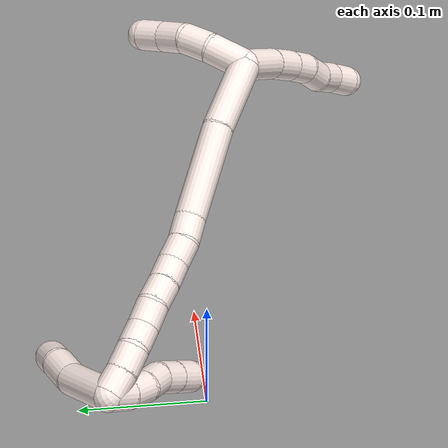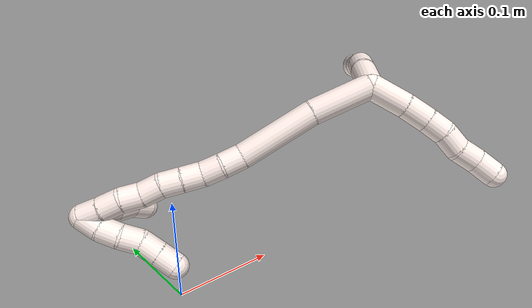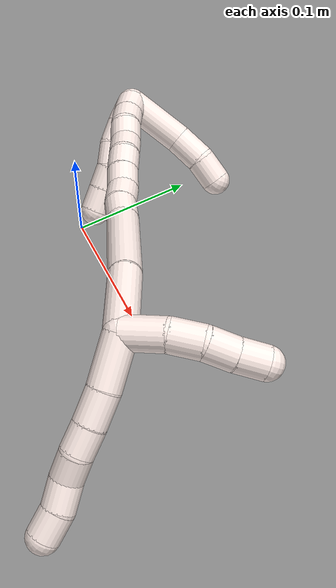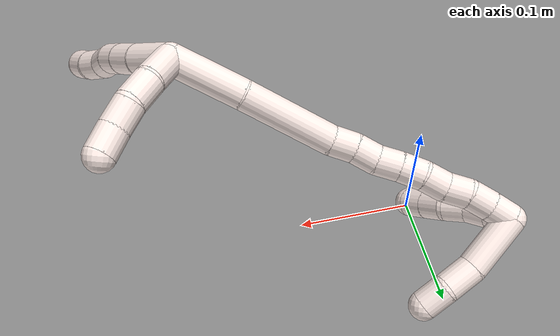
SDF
<sdf version="1.7">
 <world name="default">
  <model name="11">
   <static>0</static>
   <link name="11">
    <collision name="collision-cylinder-e_1_2_8">
     <pose>0.007022 -0.018202 -0.000263 1.58525 0.368142 0.373379</pose>
     <geometry><cylinder><radius>0.0125</radius><length>0.039023</length></cylinder></geometry>
     <surface>
      <friction><ode><mu>1.16</mu><mu2>1.16</mu2><slip1>0</slip1><slip2>0</slip2></ode></friction>
      <contact><ode><kp>1e+06</kp><kd>1</kd><max_vel>0</max_vel><min_depth>0.001</min_depth></ode></contact>
     </surface>
    </collision>
    <visual name="visual-cylinder-e_1_2_8">
     <pose>0.007022 -0.018202 -0.000263 1.58525 0.368142 0.373379</pose>
     <geometry><cylinder><radius>0.0125</radius><length>0.039023</length></cylinder></geometry>
     <material><ambient>1 0.933333 0.909804 1</ambient></material>
    </visual>
    <collision name="collision-cylinder-e_2_8_9">
     <pose>0.017287 -0.048759 -0.000227 1.54657 0.256622 0.250544</pose>
     <geometry><cylinder><radius>0.0125</radius><length>0.025552</length></cylinder></geometry>
     <surface>
      <friction><ode><mu>1.16</mu><mu2>1.16</mu2><slip1>0</slip1><slip2>0</slip2></ode></friction>
      <contact><ode><kp>1e+06</kp><kd>1</kd><max_vel>0</max_vel><min_depth>0.001</min_depth></ode></contact>
     </surface>
    </collision>
    <visual name="visual-cylinder-e_2_8_9">
     <pose>0.017287 -0.048759 -0.000227 1.54657 0.256622 0.250544</pose>
     <geometry><cylinder><radius>0.0125</radius><length>0.025552</length></cylinder></geometry>
     <material><ambient>1 0.933333 0.909804 1</ambient></material>
    </visual>
    <collision name="collision-cylinder-e_3_9_10">
     <pose>0.022465 -0.071266 0.000379 1.54058 0.188326 0.182751</pose>
     <geometry><cylinder><radius>0.0125</radius><length>0.020681</length></cylinder></geometry>
     <surface>
      <friction><ode><mu>1.16</mu><mu2>1.16</mu2><slip1>0</slip1><slip2>0</slip2></ode></friction>
      <contact><ode><kp>1e+06</kp><kd>1</kd><max_vel>0</max_vel><min_depth>0.001</min_depth></ode></contact>
     </surface>
    </collision>
    <visual name="visual-cylinder-e_3_9_10">
     <pose>0.022465 -0.071266 0.000379 1.54058 0.188326 0.182751</pose>
     <geometry><cylinder><radius>0.0125</radius><length>0.020681</length></cylinder></geometry>
     <material><ambient>1 0.933333 0.909804 1</ambient></material>
    </visual>
    <collision name="collision-cylinder-e_4_10_11">
     <pose>0.024766 -0.091761 -0.000958 1.72847 0.034853 0.04083</pose>
     <geometry><cylinder><radius>0.0125</radius><length>0.020957</length></cylinder></geometry>
     <surface>
      <friction><ode><mu>1.16</mu><mu2>1.16</mu2><slip1>0</slip1><slip2>0</slip2></ode></friction>
      <contact><ode><kp>1e+06</kp><kd>1</kd><max_vel>0</max_vel><min_depth>0.001</min_depth></ode></contact>
     </surface>
    </collision>
    <visual name="visual-cylinder-e_4_10_11">
     <pose>0.024766 -0.091761 -0.000958 1.72847 0.034853 0.04083</pose>
     <geometry><cylinder><radius>0.0125</radius><length>0.020957</length></cylinder></geometry>
     <material><ambient>1 0.933333 0.909804 1</ambient></material>
    </visual>
    <collision name="collision-cylinder-e_5_11_12">
     <pose>0.028644 -0.112488 -0.003339 1.64157 0.325401 0.348821</pose>
     <geometry><cylinder><radius>0.0125</radius><length>0.021975</length></cylinder></geometry>
     <surface>
      <friction><ode><mu>1.16</mu><mu2>1.16</mu2><slip1>0</slip1><slip2>0</slip2></ode></friction>
      <contact><ode><kp>1e+06</kp><kd>1</kd><max_vel>0</max_vel><min_depth>0.001</min_depth></ode></contact>
     </surface>
    </collision>
    <visual name="visual-cylinder-e_5_11_12">
     <pose>0.028644 -0.112488 -0.003339 1.64157 0.325401 0.348821</pose>
     <geometry><cylinder><radius>0.0125</radius><length>0.021975</length></cylinder></geometry>
     <material><ambient>1 0.933333 0.909804 1</ambient></material>
    </visual>
    <collision name="collision-cylinder-e_6_12_6">
     <pose>0.033668 -0.133646 -0.003306 1.49954 0.139054 0.129511</pose>
     <geometry><cylinder><radius>0.0125</radius><length>0.021812</length></cylinder></geometry>
     <surface>
      <friction><ode><mu>1.16</mu><mu2>1.16</mu2><slip1>0</slip1><slip2>0</slip2></ode></friction>
      <contact><ode><kp>1e+06</kp><kd>1</kd><max_vel>0</max_vel><min_depth>0.001</min_depth></ode></contact>
     </surface>
    </collision>
    <visual name="visual-cylinder-e_6_12_6">
     <pose>0.033668 -0.133646 -0.003306 1.49954 0.139054 0.129511</pose>
     <geometry><cylinder><radius>0.0125</radius><length>0.021812</length></cylinder></geometry>
     <material><ambient>1 0.933333 0.909804 1</ambient></material>
    </visual>
    <collision name="collision-cylinder-e_1_2_13">
     <pose>0.009723 0.008159 -0.009747 -2.44465 0.652978 -1.50048</pose>
     <geometry><cylinder><radius>0.0125</radius><length>0.032006</length></cylinder></geometry>
     <surface>
      <friction><ode><mu>1.16</mu><mu2>1.16</mu2><slip1>0</slip1><slip2>0</slip2></ode></friction>
      <contact><ode><kp>1e+06</kp><kd>1</kd><max_vel>0</max_vel><min_depth>0.001</min_depth></ode></contact>
     </surface>
    </collision>
    <visual name="visual-cylinder-e_1_2_13">
     <pose>0.009723 0.008159 -0.009747 -2.44465 0.652978 -1.50048</pose>
     <geometry><cylinder><radius>0.0125</radius><length>0.032006</length></cylinder></geometry>
     <material><ambient>1 0.933333 0.909804 1</ambient></material>
    </visual>
    <collision name="collision-cylinder-e_2_13_14">
     <pose>0.026828 0.020291 -0.028358 -2.72019 0.649843 -2.01022</pose>
     <geometry><cylinder><radius>0.0125</radius><length>0.024401</length></cylinder></geometry>
     <surface>
      <friction><ode><mu>1.16</mu><mu2>1.16</mu2><slip1>0</slip1><slip2>0</slip2></ode></friction>
      <contact><ode><kp>1e+06</kp><kd>1</kd><max_vel>0</max_vel><min_depth>0.001</min_depth></ode></contact>
     </surface>
    </collision>
    <visual name="visual-cylinder-e_2_13_14">
     <pose>0.026828 0.020291 -0.028358 -2.72019 0.649843 -2.01022</pose>
     <geometry><cylinder><radius>0.0125</radius><length>0.024401</length></cylinder></geometry>
     <material><ambient>1 0.933333 0.909804 1</ambient></material>
    </visual>
    <collision name="collision-cylinder-e_3_14_15">
     <pose>0.039363 0.025442 -0.046824 -3.01955 0.489491 -2.66174</pose>
     <geometry><cylinder><radius>0.0125</radius><length>0.021922</length></cylinder></geometry>
     <surface>
      <friction><ode><mu>1.16</mu><mu2>1.16</mu2><slip1>0</slip1><slip2>0</slip2></ode></friction>
      <contact><ode><kp>1e+06</kp><kd>1</kd><max_vel>0</max_vel><min_depth>0.001</min_depth></ode></contact>
     </surface>
    </collision>
    <visual name="visual-cylinder-e_3_14_15">
     <pose>0.039363 0.025442 -0.046824 -3.01955 0.489491 -2.66174</pose>
     <geometry><cylinder><radius>0.0125</radius><length>0.021922</length></cylinder></geometry>
     <material><ambient>1 0.933333 0.909804 1</ambient></material>
    </visual>
    <collision name="collision-cylinder-e_4_15_5">
     <pose>0.049255 0.028698 -0.065946 -2.92669 0.452535 -2.26522</pose>
     <geometry><cylinder><radius>0.0125</radius><length>0.021671</length></cylinder></geometry>
     <surface>
      <friction><ode><mu>1.16</mu><mu2>1.16</mu2><slip1>0</slip1><slip2>0</slip2></ode></friction>
      <contact><ode><kp>1e+06</kp><kd>1</kd><max_vel>0</max_vel><min_depth>0.001</min_depth></ode></contact>
     </surface>
    </collision>
    <visual name="visual-cylinder-e_4_15_5">
     <pose>0.049255 0.028698 -0.065946 -2.92669 0.452535 -2.26522</pose>
     <geometry><cylinder><radius>0.0125</radius><length>0.021671</length></cylinder></geometry>
     <material><ambient>1 0.933333 0.909804 1</ambient></material>
    </visual>
    <collision name="collision-cylinder-e_1_2_16">
     <pose>-0.026909 0.009677 -0.010598 -2.40158 -1.08086 1.99386</pose>
     <geometry><cylinder><radius>0.0125</radius><length>0.060993</length></cylinder></geometry>
     <surface>
      <friction><ode><mu>1.16</mu><mu2>1.16</mu2><slip1>0</slip1><slip2>0</slip2></ode></friction>
      <contact><ode><kp>1e+06</kp><kd>1</kd><max_vel>0</max_vel><min_depth>0.001</min_depth></ode></contact>
     </surface>
    </collision>
    <visual name="visual-cylinder-e_1_2_16">
     <pose>-0.026909 0.009677 -0.010598 -2.40158 -1.08086 1.99386</pose>
     <geometry><cylinder><radius>0.0125</radius><length>0.060993</length></cylinder></geometry>
     <material><ambient>1 0.933333 0.909804 1</ambient></material>
    </visual>
    <collision name="collision-cylinder-e_2_16_17">
     <pose>-0.08963 0.026772 -0.035147 -2.65288 -1.15525 2.41085</pose>
     <geometry><cylinder><radius>0.0125</radius><length>0.078285</length></cylinder></geometry>
     <surface>
      <friction><ode><mu>1.16</mu><mu2>1.16</mu2><slip1>0</slip1><slip2>0</slip2></ode></friction>
      <contact><ode><kp>1e+06</kp><kd>1</kd><max_vel>0</max_vel><min_depth>0.001</min_depth></ode></contact>
     </surface>
    </collision>
    <visual name="visual-cylinder-e_2_16_17">
     <pose>-0.08963 0.026772 -0.035147 -2.65288 -1.15525 2.41085</pose>
     <geometry><cylinder><radius>0.0125</radius><length>0.078285</length></cylinder></geometry>
     <material><ambient>1 0.933333 0.909804 1</ambient></material>
    </visual>
    <collision name="collision-cylinder-e_3_17_18">
     <pose>-0.135069 0.037163 -0.051292 -2.20655 -1.20441 1.87464</pose>
     <geometry><cylinder><radius>0.0125</radius><length>0.020624</length></cylinder></geometry>
     <surface>
      <friction><ode><mu>1.16</mu><mu2>1.16</mu2><slip1>0</slip1><slip2>0</slip2></ode></friction>
      <contact><ode><kp>1e+06</kp><kd>1</kd><max_vel>0</max_vel><min_depth>0.001</min_depth></ode></contact>
     </surface>
    </collision>
    <visual name="visual-cylinder-e_3_17_18">
     <pose>-0.135069 0.037163 -0.051292 -2.20655 -1.20441 1.87464</pose>
     <geometry><cylinder><radius>0.0125</radius><length>0.020624</length></cylinder></geometry>
     <material><ambient>1 0.933333 0.909804 1</ambient></material>
    </visual>
    <collision name="collision-cylinder-e_4_18_19">
     <pose>-0.153301 0.043519 -0.057353 -2.42274 -1.03247 1.97203</pose>
     <geometry><cylinder><radius>0.0125</radius><length>0.020045</length></cylinder></geometry>
     <surface>
      <friction><ode><mu>1.16</mu><mu2>1.16</mu2><slip1>0</slip1><slip2>0</slip2></ode></friction>
      <contact><ode><kp>1e+06</kp><kd>1</kd><max_vel>0</max_vel><min_depth>0.001</min_depth></ode></contact>
     </surface>
    </collision>
    <visual name="visual-cylinder-e_4_18_19">
     <pose>-0.153301 0.043519 -0.057353 -2.42274 -1.03247 1.97203</pose>
     <geometry><cylinder><radius>0.0125</radius><length>0.020045</length></cylinder></geometry>
     <material><ambient>1 0.933333 0.909804 1</ambient></material>
    </visual>
    <collision name="collision-cylinder-e_5_19_20">
     <pose>-0.170648 0.051425 -0.063083 -1.96173 -1.06073 1.43873</pose>
     <geometry><cylinder><radius>0.0125</radius><length>0.020034</length></cylinder></geometry>
     <surface>
      <friction><ode><mu>1.16</mu><mu2>1.16</mu2><slip1>0</slip1><slip2>0</slip2></ode></friction>
      <contact><ode><kp>1e+06</kp><kd>1</kd><max_vel>0</max_vel><min_depth>0.001</min_depth></ode></contact>
     </surface>
    </collision>
    <visual name="visual-cylinder-e_5_19_20">
     <pose>-0.170648 0.051425 -0.063083 -1.96173 -1.06073 1.43873</pose>
     <geometry><cylinder><radius>0.0125</radius><length>0.020034</length></cylinder></geometry>
     <material><ambient>1 0.933333 0.909804 1</ambient></material>
    </visual>
    <collision name="collision-cylinder-e_6_20_21">
     <pose>-0.187853 0.060613 -0.067533 -2.07689 -1.00833 1.50533</pose>
     <geometry><cylinder><radius>0.0125</radius><length>0.020009</length></cylinder></geometry>
     <surface>
      <friction><ode><mu>1.16</mu><mu2>1.16</mu2><slip1>0</slip1><slip2>0</slip2></ode></friction>
      <contact><ode><kp>1e+06</kp><kd>1</kd><max_vel>0</max_vel><min_depth>0.001</min_depth></ode></contact>
     </surface>
    </collision>
    <visual name="visual-cylinder-e_6_20_21">
     <pose>-0.187853 0.060613 -0.067533 -2.07689 -1.00833 1.50533</pose>
     <geometry><cylinder><radius>0.0125</radius><length>0.020009</length></cylinder></geometry>
     <material><ambient>1 0.933333 0.909804 1</ambient></material>
    </visual>
    <collision name="collision-cylinder-e_7_21_22">
     <pose>-0.205116 0.068193 -0.073883 -2.48274 -1.07491 2.09994</pose>
     <geometry><cylinder><radius>0.0125</radius><length>0.020009</length></cylinder></geometry>
     <surface>
      <friction><ode><mu>1.16</mu><mu2>1.16</mu2><slip1>0</slip1><slip2>0</slip2></ode></friction>
      <contact><ode><kp>1e+06</kp><kd>1</kd><max_vel>0</max_vel><min_depth>0.001</min_depth></ode></contact>
     </surface>
    </collision>
    <visual name="visual-cylinder-e_7_21_22">
     <pose>-0.205116 0.068193 -0.073883 -2.48274 -1.07491 2.09994</pose>
     <geometry><cylinder><radius>0.0125</radius><length>0.020009</length></cylinder></geometry>
     <material><ambient>1 0.933333 0.909804 1</ambient></material>
    </visual>
    <collision name="collision-cylinder-e_8_22_23">
     <pose>-0.222573 0.075752 -0.079512 -1.95266 -1.04662 1.41298</pose>
     <geometry><cylinder><radius>0.0125</radius><length>0.02</length></cylinder></geometry>
     <surface>
      <friction><ode><mu>1.16</mu><mu2>1.16</mu2><slip1>0</slip1><slip2>0</slip2></ode></friction>
      <contact><ode><kp>1e+06</kp><kd>1</kd><max_vel>0</max_vel><min_depth>0.001</min_depth></ode></contact>
     </surface>
    </collision>
    <visual name="visual-cylinder-e_8_22_23">
     <pose>-0.222573 0.075752 -0.079512 -1.95266 -1.04662 1.41298</pose>
     <geometry><cylinder><radius>0.0125</radius><length>0.02</length></cylinder></geometry>
     <material><ambient>1 0.933333 0.909804 1</ambient></material>
    </visual>
    <collision name="collision-cylinder-e_9_23_24">
     <pose>-0.239846 0.083549 -0.085357 -2.47158 -1.03831 2.04725</pose>
     <geometry><cylinder><radius>0.0125</radius><length>0.02</length></cylinder></geometry>
     <surface>
      <friction><ode><mu>1.16</mu><mu2>1.16</mu2><slip1>0</slip1><slip2>0</slip2></ode></friction>
      <contact><ode><kp>1e+06</kp><kd>1</kd><max_vel>0</max_vel><min_depth>0.001</min_depth></ode></contact>
     </surface>
    </collision>
    <visual name="visual-cylinder-e_9_23_24">
     <pose>-0.239846 0.083549 -0.085357 -2.47158 -1.03831 2.04725</pose>
     <geometry><cylinder><radius>0.0125</radius><length>0.02</length></cylinder></geometry>
     <material><ambient>1 0.933333 0.909804 1</ambient></material>
    </visual>
    <collision name="collision-cylinder-e_10_24_1">
     <pose>-0.256603 0.090436 -0.093783 -2.44305 -0.951284 1.91068</pose>
     <geometry><cylinder><radius>0.0125</radius><length>0.02</length></cylinder></geometry>
     <surface>
      <friction><ode><mu>1.16</mu><mu2>1.16</mu2><slip1>0</slip1><slip2>0</slip2></ode></friction>
      <contact><ode><kp>1e+06</kp><kd>1</kd><max_vel>0</max_vel><min_depth>0.001</min_depth></ode></contact>
     </surface>
    </collision>
    <visual name="visual-cylinder-e_10_24_1">
     <pose>-0.256603 0.090436 -0.093783 -2.44305 -0.951284 1.91068</pose>
     <geometry><cylinder><radius>0.0125</radius><length>0.02</length></cylinder></geometry>
     <material><ambient>1 0.933333 0.909804 1</ambient></material>
    </visual>
    <collision name="collision-cylinder-e_1_1_25">
     <pose>-0.250556 0.090531 -0.119129 2.9692 0.589509 2.58701</pose>
     <geometry><cylinder><radius>0.0125</radius><length>0.051043</length></cylinder></geometry>
     <surface>
      <friction><ode><mu>1.16</mu><mu2>1.16</mu2><slip1>0</slip1><slip2>0</slip2></ode></friction>
      <contact><ode><kp>1e+06</kp><kd>1</kd><max_vel>0</max_vel><min_depth>0.001</min_depth></ode></contact>
     </surface>
    </collision>
    <visual name="visual-cylinder-e_1_1_25">
     <pose>-0.250556 0.090531 -0.119129 2.9692 0.589509 2.58701</pose>
     <geometry><cylinder><radius>0.0125</radius><length>0.051043</length></cylinder></geometry>
     <material><ambient>1 0.933333 0.909804 1</ambient></material>
    </visual>
    <collision name="collision-cylinder-e_2_25_26">
     <pose>-0.22665 0.084371 -0.14875 2.86019 0.819342 2.51101</pose>
     <geometry><cylinder><radius>0.0125</radius><length>0.026596</length></cylinder></geometry>
     <surface>
      <friction><ode><mu>1.16</mu><mu2>1.16</mu2><slip1>0</slip1><slip2>0</slip2></ode></friction>
      <contact><ode><kp>1e+06</kp><kd>1</kd><max_vel>0</max_vel><min_depth>0.001</min_depth></ode></contact>
     </surface>
    </collision>
    <visual name="visual-cylinder-e_2_25_26">
     <pose>-0.22665 0.084371 -0.14875 2.86019 0.819342 2.51101</pose>
     <geometry><cylinder><radius>0.0125</radius><length>0.026596</length></cylinder></geometry>
     <material><ambient>1 0.933333 0.909804 1</ambient></material>
    </visual>
    <collision name="collision-cylinder-e_3_26_4">
     <pose>-0.210436 0.077259 -0.165326 2.61269 0.620175 1.73829</pose>
     <geometry><cylinder><radius>0.0125</radius><length>0.02236</length></cylinder></geometry>
     <surface>
      <friction><ode><mu>1.16</mu><mu2>1.16</mu2><slip1>0</slip1><slip2>0</slip2></ode></friction>
      <contact><ode><kp>1e+06</kp><kd>1</kd><max_vel>0</max_vel><min_depth>0.001</min_depth></ode></contact>
     </surface>
    </collision>
    <visual name="visual-cylinder-e_3_26_4">
     <pose>-0.210436 0.077259 -0.165326 2.61269 0.620175 1.73829</pose>
     <geometry><cylinder><radius>0.0125</radius><length>0.02236</length></cylinder></geometry>
     <material><ambient>1 0.933333 0.909804 1</ambient></material>
    </visual>
    <collision name="collision-cylinder-e_1_1_27">
     <pose>-0.262572 0.084438 -0.097479 1.49388 0.219003 0.202889</pose>
     <geometry><cylinder><radius>0.0125</radius><length>0.02</length></cylinder></geometry>
     <surface>
      <friction><ode><mu>1.16</mu><mu2>1.16</mu2><slip1>0</slip1><slip2>0</slip2></ode></friction>
      <contact><ode><kp>1e+06</kp><kd>1</kd><max_vel>0</max_vel><min_depth>0.001</min_depth></ode></contact>
     </surface>
    </collision>
    <visual name="visual-cylinder-e_1_1_27">
     <pose>-0.262572 0.084438 -0.097479 1.49388 0.219003 0.202889</pose>
     <geometry><cylinder><radius>0.0125</radius><length>0.02</length></cylinder></geometry>
     <material><ambient>1 0.933333 0.909804 1</ambient></material>
    </visual>
    <collision name="collision-cylinder-e_2_27_28">
     <pose>-0.256213 0.065691 -0.095635 1.45008 0.432001 0.384039</pose>
     <geometry><cylinder><radius>0.0125</radius><length>0.02</length></cylinder></geometry>
     <surface>
      <friction><ode><mu>1.16</mu><mu2>1.16</mu2><slip1>0</slip1><slip2>0</slip2></ode></friction>
      <contact><ode><kp>1e+06</kp><kd>1</kd><max_vel>0</max_vel><min_depth>0.001</min_depth></ode></contact>
     </surface>
    </collision>
    <visual name="visual-cylinder-e_2_27_28">
     <pose>-0.256213 0.065691 -0.095635 1.45008 0.432001 0.384039</pose>
     <geometry><cylinder><radius>0.0125</radius><length>0.02</length></cylinder></geometry>
     <material><ambient>1 0.933333 0.909804 1</ambient></material>
    </visual>
    <collision name="collision-cylinder-e_3_28_29">
     <pose>-0.246667 0.048256 -0.095163 1.64443 0.565605 0.606347</pose>
     <geometry><cylinder><radius>0.0125</radius><length>0.02</length></cylinder></geometry>
     <surface>
      <friction><ode><mu>1.16</mu><mu2>1.16</mu2><slip1>0</slip1><slip2>0</slip2></ode></friction>
      <contact><ode><kp>1e+06</kp><kd>1</kd><max_vel>0</max_vel><min_depth>0.001</min_depth></ode></contact>
     </surface>
    </collision>
    <visual name="visual-cylinder-e_3_28_29">
     <pose>-0.246667 0.048256 -0.095163 1.64443 0.565605 0.606347</pose>
     <geometry><cylinder><radius>0.0125</radius><length>0.02</length></cylinder></geometry>
     <material><ambient>1 0.933333 0.909804 1</ambient></material>
    </visual>
    <collision name="collision-cylinder-e_4_29_30">
     <pose>-0.239049 0.0301 -0.096118 1.60514 0.227787 0.235674</pose>
     <geometry><cylinder><radius>0.0125</radius><length>0.02</length></cylinder></geometry>
     <surface>
      <friction><ode><mu>1.16</mu><mu2>1.16</mu2><slip1>0</slip1><slip2>0</slip2></ode></friction>
      <contact><ode><kp>1e+06</kp><kd>1</kd><max_vel>0</max_vel><min_depth>0.001</min_depth></ode></contact>
     </surface>
    </collision>
    <visual name="visual-cylinder-e_4_29_30">
     <pose>-0.239049 0.0301 -0.096118 1.60514 0.227787 0.235674</pose>
     <geometry><cylinder><radius>0.0125</radius><length>0.02</length></cylinder></geometry>
     <material><ambient>1 0.933333 0.909804 1</ambient></material>
    </visual>
    <collision name="collision-cylinder-e_5_30_3">
     <pose>-0.234589 0.010613 -0.096731 1.59927 0.221986 0.228344</pose>
     <geometry><cylinder><radius>0.0125</radius><length>0.02</length></cylinder></geometry>
     <surface>
      <friction><ode><mu>1.16</mu><mu2>1.16</mu2><slip1>0</slip1><slip2>0</slip2></ode></friction>
      <contact><ode><kp>1e+06</kp><kd>1</kd><max_vel>0</max_vel><min_depth>0.001</min_depth></ode></contact>
     </surface>
    </collision>
    <visual name="visual-cylinder-e_5_30_3">
     <pose>-0.234589 0.010613 -0.096731 1.59927 0.221986 0.228344</pose>
     <geometry><cylinder><radius>0.0125</radius><length>0.02</length></cylinder></geometry>
     <material><ambient>1 0.933333 0.909804 1</ambient></material>
    </visual>
    <collision name="collision-sphere-3">
     <pose>-0.232387 0.000863 -0.097008 0 -0 0</pose>
     <geometry><sphere><radius>0.0125</radius></sphere></geometry>
     <surface>
      <friction><ode><mu>1.16</mu><mu2>1.16</mu2><slip1>0</slip1><slip2>0</slip2></ode></friction>
      <contact><ode><kp>1e+06</kp><kd>1</kd><max_vel>0</max_vel><min_depth>0.001</min_depth></ode></contact>
     </surface>
    </collision>
    <visual name="visual-sphere-3">
     <pose>-0.232387 0.000863 -0.097008 0 -0 0</pose>
     <geometry><sphere><radius>0.0125</radius></sphere></geometry>
     <material><ambient>1 0.933333 0.909804 1</ambient></material>
    </visual>
    <collision name="collision-sphere-30">
     <pose>-0.236791 0.020364 -0.096453 0 -0 0</pose>
     <geometry><sphere><radius>0.0125</radius></sphere></geometry>
     <surface>
      <friction><ode><mu>1.16</mu><mu2>1.16</mu2><slip1>0</slip1><slip2>0</slip2></ode></friction>
      <contact><ode><kp>1e+06</kp><kd>1</kd><max_vel>0</max_vel><min_depth>0.001</min_depth></ode></contact>
     </surface>
    </collision>
    <visual name="visual-sphere-30">
     <pose>-0.236791 0.020364 -0.096453 0 -0 0</pose>
     <geometry><sphere><radius>0.0125</radius></sphere></geometry>
     <material><ambient>1 0.933333 0.909804 1</ambient></material>
    </visual>
    <collision name="collision-sphere-29">
     <pose>-0.241307 0.039836 -0.095784 0 -0 0</pose>
     <geometry><sphere><radius>0.0125</radius></sphere></geometry>
     <surface>
      <friction><ode><mu>1.16</mu><mu2>1.16</mu2><slip1>0</slip1><slip2>0</slip2></ode></friction>
      <contact><ode><kp>1e+06</kp><kd>1</kd><max_vel>0</max_vel><min_depth>0.001</min_depth></ode></contact>
     </surface>
    </collision>
    <visual name="visual-sphere-29">
     <pose>-0.241307 0.039836 -0.095784 0 -0 0</pose>
     <geometry><sphere><radius>0.0125</radius></sphere></geometry>
     <material><ambient>1 0.933333 0.909804 1</ambient></material>
    </visual>
    <collision name="collision-sphere-28">
     <pose>-0.252026 0.056675 -0.094542 0 -0 0</pose>
     <geometry><sphere><radius>0.0125</radius></sphere></geometry>
     <surface>
      <friction><ode><mu>1.16</mu><mu2>1.16</mu2><slip1>0</slip1><slip2>0</slip2></ode></friction>
      <contact><ode><kp>1e+06</kp><kd>1</kd><max_vel>0</max_vel><min_depth>0.001</min_depth></ode></contact>
     </surface>
    </collision>
    <visual name="visual-sphere-28">
     <pose>-0.252026 0.056675 -0.094542 0 -0 0</pose>
     <geometry><sphere><radius>0.0125</radius></sphere></geometry>
     <material><ambient>1 0.933333 0.909804 1</ambient></material>
    </visual>
    <collision name="collision-sphere-27">
     <pose>-0.2604 0.074706 -0.096729 0 -0 0</pose>
     <geometry><sphere><radius>0.0125</radius></sphere></geometry>
     <surface>
      <friction><ode><mu>1.16</mu><mu2>1.16</mu2><slip1>0</slip1><slip2>0</slip2></ode></friction>
      <contact><ode><kp>1e+06</kp><kd>1</kd><max_vel>0</max_vel><min_depth>0.001</min_depth></ode></contact>
     </surface>
    </collision>
    <visual name="visual-sphere-27">
     <pose>-0.2604 0.074706 -0.096729 0 -0 0</pose>
     <geometry><sphere><radius>0.0125</radius></sphere></geometry>
     <material><ambient>1 0.933333 0.909804 1</ambient></material>
    </visual>
    <collision name="collision-sphere-4">
     <pose>-0.203938 0.072668 -0.173181 0 -0 0</pose>
     <geometry><sphere><radius>0.0125</radius></sphere></geometry>
     <surface>
      <friction><ode><mu>1.16</mu><mu2>1.16</mu2><slip1>0</slip1><slip2>0</slip2></ode></friction>
      <contact><ode><kp>1e+06</kp><kd>1</kd><max_vel>0</max_vel><min_depth>0.001</min_depth></ode></contact>
     </surface>
    </collision>
    <visual name="visual-sphere-4">
     <pose>-0.203938 0.072668 -0.173181 0 -0 0</pose>
     <geometry><sphere><radius>0.0125</radius></sphere></geometry>
     <material><ambient>1 0.933333 0.909804 1</ambient></material>
    </visual>
    <collision name="collision-sphere-26">
     <pose>-0.216933 0.08185 -0.157471 0 -0 0</pose>
     <geometry><sphere><radius>0.0125</radius></sphere></geometry>
     <surface>
      <friction><ode><mu>1.16</mu><mu2>1.16</mu2><slip1>0</slip1><slip2>0</slip2></ode></friction>
      <contact><ode><kp>1e+06</kp><kd>1</kd><max_vel>0</max_vel><min_depth>0.001</min_depth></ode></contact>
     </surface>
    </collision>
    <visual name="visual-sphere-26">
     <pose>-0.216933 0.08185 -0.157471 0 -0 0</pose>
     <geometry><sphere><radius>0.0125</radius></sphere></geometry>
     <material><ambient>1 0.933333 0.909804 1</ambient></material>
    </visual>
    <collision name="collision-sphere-25">
     <pose>-0.236367 0.086892 -0.140028 0 -0 0</pose>
     <geometry><sphere><radius>0.0125</radius></sphere></geometry>
     <surface>
      <friction><ode><mu>1.16</mu><mu2>1.16</mu2><slip1>0</slip1><slip2>0</slip2></ode></friction>
      <contact><ode><kp>1e+06</kp><kd>1</kd><max_vel>0</max_vel><min_depth>0.001</min_depth></ode></contact>
     </surface>
    </collision>
    <visual name="visual-sphere-25">
     <pose>-0.236367 0.086892 -0.140028 0 -0 0</pose>
     <geometry><sphere><radius>0.0125</radius></sphere></geometry>
     <material><ambient>1 0.933333 0.909804 1</ambient></material>
    </visual>
    <collision name="collision-sphere-1">
     <pose>-0.264745 0.09417 -0.098229 0 -0 0</pose>
     <geometry><sphere><radius>0.0125</radius></sphere></geometry>
     <surface>
      <friction><ode><mu>1.16</mu><mu2>1.16</mu2><slip1>0</slip1><slip2>0</slip2></ode></friction>
      <contact><ode><kp>1e+06</kp><kd>1</kd><max_vel>0</max_vel><min_depth>0.001</min_depth></ode></contact>
     </surface>
    </collision>
    <visual name="visual-sphere-1">
     <pose>-0.264745 0.09417 -0.098229 0 -0 0</pose>
     <geometry><sphere><radius>0.0125</radius></sphere></geometry>
     <material><ambient>1 0.933333 0.909804 1</ambient></material>
    </visual>
    <collision name="collision-sphere-24">
     <pose>-0.248461 0.086702 -0.089336 0 -0 0</pose>
     <geometry><sphere><radius>0.0125</radius></sphere></geometry>
     <surface>
      <friction><ode><mu>1.16</mu><mu2>1.16</mu2><slip1>0</slip1><slip2>0</slip2></ode></friction>
      <contact><ode><kp>1e+06</kp><kd>1</kd><max_vel>0</max_vel><min_depth>0.001</min_depth></ode></contact>
     </surface>
    </collision>
    <visual name="visual-sphere-24">
     <pose>-0.248461 0.086702 -0.089336 0 -0 0</pose>
     <geometry><sphere><radius>0.0125</radius></sphere></geometry>
     <material><ambient>1 0.933333 0.909804 1</ambient></material>
    </visual>
    <collision name="collision-sphere-23">
     <pose>-0.23123 0.080397 -0.081378 0 -0 0</pose>
     <geometry><sphere><radius>0.0125</radius></sphere></geometry>
     <surface>
      <friction><ode><mu>1.16</mu><mu2>1.16</mu2><slip1>0</slip1><slip2>0</slip2></ode></friction>
      <contact><ode><kp>1e+06</kp><kd>1</kd><max_vel>0</max_vel><min_depth>0.001</min_depth></ode></contact>
     </surface>
    </collision>
    <visual name="visual-sphere-23">
     <pose>-0.23123 0.080397 -0.081378 0 -0 0</pose>
     <geometry><sphere><radius>0.0125</radius></sphere></geometry>
     <material><ambient>1 0.933333 0.909804 1</ambient></material>
    </visual>
    <collision name="collision-sphere-22">
     <pose>-0.213915 0.071108 -0.077647 0 -0 0</pose>
     <geometry><sphere><radius>0.0125</radius></sphere></geometry>
     <surface>
      <friction><ode><mu>1.16</mu><mu2>1.16</mu2><slip1>0</slip1><slip2>0</slip2></ode></friction>
      <contact><ode><kp>1e+06</kp><kd>1</kd><max_vel>0</max_vel><min_depth>0.001</min_depth></ode></contact>
     </surface>
    </collision>
    <visual name="visual-sphere-22">
     <pose>-0.213915 0.071108 -0.077647 0 -0 0</pose>
     <geometry><sphere><radius>0.0125</radius></sphere></geometry>
     <material><ambient>1 0.933333 0.909804 1</ambient></material>
    </visual>
    <collision name="collision-sphere-21">
     <pose>-0.196316 0.065279 -0.070119 0 -0 0</pose>
     <geometry><sphere><radius>0.0125</radius></sphere></geometry>
     <surface>
      <friction><ode><mu>1.16</mu><mu2>1.16</mu2><slip1>0</slip1><slip2>0</slip2></ode></friction>
      <contact><ode><kp>1e+06</kp><kd>1</kd><max_vel>0</max_vel><min_depth>0.001</min_depth></ode></contact>
     </surface>
    </collision>
    <visual name="visual-sphere-21">
     <pose>-0.196316 0.065279 -0.070119 0 -0 0</pose>
     <geometry><sphere><radius>0.0125</radius></sphere></geometry>
     <material><ambient>1 0.933333 0.909804 1</ambient></material>
    </visual>
    <collision name="collision-sphere-12">
     <pose>0.032156 -0.122873 -0.004075 0 -0 0</pose>
     <geometry><sphere><radius>0.0125</radius></sphere></geometry>
     <surface>
      <friction><ode><mu>1.16</mu><mu2>1.16</mu2><slip1>0</slip1><slip2>0</slip2></ode></friction>
      <contact><ode><kp>1e+06</kp><kd>1</kd><max_vel>0</max_vel><min_depth>0.001</min_depth></ode></contact>
     </surface>
    </collision>
    <visual name="visual-sphere-12">
     <pose>0.032156 -0.122873 -0.004075 0 -0 0</pose>
     <geometry><sphere><radius>0.0125</radius></sphere></geometry>
     <material><ambient>1 0.933333 0.909804 1</ambient></material>
    </visual>
    <collision name="collision-sphere-11">
     <pose>0.025131 -0.102103 -0.002602 0 -0 0</pose>
     <geometry><sphere><radius>0.0125</radius></sphere></geometry>
     <surface>
      <friction><ode><mu>1.16</mu><mu2>1.16</mu2><slip1>0</slip1><slip2>0</slip2></ode></friction>
      <contact><ode><kp>1e+06</kp><kd>1</kd><max_vel>0</max_vel><min_depth>0.001</min_depth></ode></contact>
     </surface>
    </collision>
    <visual name="visual-sphere-11">
     <pose>0.025131 -0.102103 -0.002602 0 -0 0</pose>
     <geometry><sphere><radius>0.0125</radius></sphere></geometry>
     <material><ambient>1 0.933333 0.909804 1</ambient></material>
    </visual>
    <collision name="collision-sphere-10">
     <pose>0.024401 -0.081419 0.000686 0 -0 0</pose>
     <geometry><sphere><radius>0.0125</radius></sphere></geometry>
     <surface>
      <friction><ode><mu>1.16</mu><mu2>1.16</mu2><slip1>0</slip1><slip2>0</slip2></ode></friction>
      <contact><ode><kp>1e+06</kp><kd>1</kd><max_vel>0</max_vel><min_depth>0.001</min_depth></ode></contact>
     </surface>
    </collision>
    <visual name="visual-sphere-10">
     <pose>0.024401 -0.081419 0.000686 0 -0 0</pose>
     <geometry><sphere><radius>0.0125</radius></sphere></geometry>
     <material><ambient>1 0.933333 0.909804 1</ambient></material>
    </visual>
    <collision name="collision-sphere-9">
     <pose>0.020529 -0.061113 7.2e-05 0 -0 0</pose>
     <geometry><sphere><radius>0.0125</radius></sphere></geometry>
     <surface>
      <friction><ode><mu>1.16</mu><mu2>1.16</mu2><slip1>0</slip1><slip2>0</slip2></ode></friction>
      <contact><ode><kp>1e+06</kp><kd>1</kd><max_vel>0</max_vel><min_depth>0.001</min_depth></ode></contact>
     </surface>
    </collision>
    <visual name="visual-sphere-9">
     <pose>0.020529 -0.061113 7.2e-05 0 -0 0</pose>
     <geometry><sphere><radius>0.0125</radius></sphere></geometry>
     <material><ambient>1 0.933333 0.909804 1</ambient></material>
    </visual>
    <collision name="collision-sphere-2">
     <geometry><sphere><radius>0.0125</radius></sphere></geometry>
     <surface>
      <friction><ode><mu>1.16</mu><mu2>1.16</mu2><slip1>0</slip1><slip2>0</slip2></ode></friction>
      <contact><ode><kp>1e+06</kp><kd>1</kd><max_vel>0</max_vel><min_depth>0.001</min_depth></ode></contact>
     </surface>
    </collision>
    <visual name="visual-sphere-2">
     <geometry><sphere><radius>0.0125</radius></sphere></geometry>
     <material><ambient>1 0.933333 0.909804 1</ambient></material>
    </visual>
    <collision name="collision-sphere-19">
     <pose>-0.161906 0.046903 -0.06122 0 -0 0</pose>
     <geometry><sphere><radius>0.0125</radius></sphere></geometry>
     <surface>
      <friction><ode><mu>1.16</mu><mu2>1.16</mu2><slip1>0</slip1><slip2>0</slip2></ode></friction>
      <contact><ode><kp>1e+06</kp><kd>1</kd><max_vel>0</max_vel><min_depth>0.001</min_depth></ode></contact>
     </surface>
    </collision>
    <visual name="visual-sphere-19">
     <pose>-0.161906 0.046903 -0.06122 0 -0 0</pose>
     <geometry><sphere><radius>0.0125</radius></sphere></geometry>
     <material><ambient>1 0.933333 0.909804 1</ambient></material>
    </visual>
    <collision name="collision-sphere-8">
     <pose>0.014044 -0.036405 -0.000526 0 -0 0</pose>
     <geometry><sphere><radius>0.0125</radius></sphere></geometry>
     <surface>
      <friction><ode><mu>1.16</mu><mu2>1.16</mu2><slip1>0</slip1><slip2>0</slip2></ode></friction>
      <contact><ode><kp>1e+06</kp><kd>1</kd><max_vel>0</max_vel><min_depth>0.001</min_depth></ode></contact>
     </surface>
    </collision>
    <visual name="visual-sphere-8">
     <pose>0.014044 -0.036405 -0.000526 0 -0 0</pose>
     <geometry><sphere><radius>0.0125</radius></sphere></geometry>
     <material><ambient>1 0.933333 0.909804 1</ambient></material>
    </visual>
    <collision name="collision-sphere-6">
     <pose>0.03518 -0.144419 -0.002537 0 -0 0</pose>
     <geometry><sphere><radius>0.0125</radius></sphere></geometry>
     <surface>
      <friction><ode><mu>1.16</mu><mu2>1.16</mu2><slip1>0</slip1><slip2>0</slip2></ode></friction>
      <contact><ode><kp>1e+06</kp><kd>1</kd><max_vel>0</max_vel><min_depth>0.001</min_depth></ode></contact>
     </surface>
    </collision>
    <visual name="visual-sphere-6">
     <pose>0.03518 -0.144419 -0.002537 0 -0 0</pose>
     <geometry><sphere><radius>0.0125</radius></sphere></geometry>
     <material><ambient>1 0.933333 0.909804 1</ambient></material>
    </visual>
    <collision name="collision-sphere-13">
     <pose>0.019446 0.016318 -0.019494 0 -0 0</pose>
     <geometry><sphere><radius>0.0125</radius></sphere></geometry>
     <surface>
      <friction><ode><mu>1.16</mu><mu2>1.16</mu2><slip1>0</slip1><slip2>0</slip2></ode></friction>
      <contact><ode><kp>1e+06</kp><kd>1</kd><max_vel>0</max_vel><min_depth>0.001</min_depth></ode></contact>
     </surface>
    </collision>
    <visual name="visual-sphere-13">
     <pose>0.019446 0.016318 -0.019494 0 -0 0</pose>
     <geometry><sphere><radius>0.0125</radius></sphere></geometry>
     <material><ambient>1 0.933333 0.909804 1</ambient></material>
    </visual>
    <collision name="collision-sphere-14">
     <pose>0.03421 0.024264 -0.037222 0 -0 0</pose>
     <geometry><sphere><radius>0.0125</radius></sphere></geometry>
     <surface>
      <friction><ode><mu>1.16</mu><mu2>1.16</mu2><slip1>0</slip1><slip2>0</slip2></ode></friction>
      <contact><ode><kp>1e+06</kp><kd>1</kd><max_vel>0</max_vel><min_depth>0.001</min_depth></ode></contact>
     </surface>
    </collision>
    <visual name="visual-sphere-14">
     <pose>0.03421 0.024264 -0.037222 0 -0 0</pose>
     <geometry><sphere><radius>0.0125</radius></sphere></geometry>
     <material><ambient>1 0.933333 0.909804 1</ambient></material>
    </visual>
    <collision name="collision-sphere-15">
     <pose>0.044517 0.02662 -0.056425 0 -0 0</pose>
     <geometry><sphere><radius>0.0125</radius></sphere></geometry>
     <surface>
      <friction><ode><mu>1.16</mu><mu2>1.16</mu2><slip1>0</slip1><slip2>0</slip2></ode></friction>
      <contact><ode><kp>1e+06</kp><kd>1</kd><max_vel>0</max_vel><min_depth>0.001</min_depth></ode></contact>
     </surface>
    </collision>
    <visual name="visual-sphere-15">
     <pose>0.044517 0.02662 -0.056425 0 -0 0</pose>
     <geometry><sphere><radius>0.0125</radius></sphere></geometry>
     <material><ambient>1 0.933333 0.909804 1</ambient></material>
    </visual>
    <collision name="collision-sphere-5">
     <pose>0.053992 0.030776 -0.075467 0 -0 0</pose>
     <geometry><sphere><radius>0.0125</radius></sphere></geometry>
     <surface>
      <friction><ode><mu>1.16</mu><mu2>1.16</mu2><slip1>0</slip1><slip2>0</slip2></ode></friction>
      <contact><ode><kp>1e+06</kp><kd>1</kd><max_vel>0</max_vel><min_depth>0.001</min_depth></ode></contact>
     </surface>
    </collision>
    <visual name="visual-sphere-5">
     <pose>0.053992 0.030776 -0.075467 0 -0 0</pose>
     <geometry><sphere><radius>0.0125</radius></sphere></geometry>
     <material><ambient>1 0.933333 0.909804 1</ambient></material>
    </visual>
    <collision name="collision-sphere-16">
     <pose>-0.053818 0.019354 -0.021195 0 -0 0</pose>
     <geometry><sphere><radius>0.0125</radius></sphere></geometry>
     <surface>
      <friction><ode><mu>1.16</mu><mu2>1.16</mu2><slip1>0</slip1><slip2>0</slip2></ode></friction>
      <contact><ode><kp>1e+06</kp><kd>1</kd><max_vel>0</max_vel><min_depth>0.001</min_depth></ode></contact>
     </surface>
    </collision>
    <visual name="visual-sphere-16">
     <pose>-0.053818 0.019354 -0.021195 0 -0 0</pose>
     <geometry><sphere><radius>0.0125</radius></sphere></geometry>
     <material><ambient>1 0.933333 0.909804 1</ambient></material>
    </visual>
    <collision name="collision-sphere-17">
     <pose>-0.125441 0.034191 -0.049098 0 -0 0</pose>
     <geometry><sphere><radius>0.0125</radius></sphere></geometry>
     <surface>
      <friction><ode><mu>1.16</mu><mu2>1.16</mu2><slip1>0</slip1><slip2>0</slip2></ode></friction>
      <contact><ode><kp>1e+06</kp><kd>1</kd><max_vel>0</max_vel><min_depth>0.001</min_depth></ode></contact>
     </surface>
    </collision>
    <visual name="visual-sphere-17">
     <pose>-0.125441 0.034191 -0.049098 0 -0 0</pose>
     <geometry><sphere><radius>0.0125</radius></sphere></geometry>
     <material><ambient>1 0.933333 0.909804 1</ambient></material>
    </visual>
    <collision name="collision-sphere-18">
     <pose>-0.144696 0.040135 -0.053486 0 -0 0</pose>
     <geometry><sphere><radius>0.0125</radius></sphere></geometry>
     <surface>
      <friction><ode><mu>1.16</mu><mu2>1.16</mu2><slip1>0</slip1><slip2>0</slip2></ode></friction>
      <contact><ode><kp>1e+06</kp><kd>1</kd><max_vel>0</max_vel><min_depth>0.001</min_depth></ode></contact>
     </surface>
    </collision>
    <visual name="visual-sphere-18">
     <pose>-0.144696 0.040135 -0.053486 0 -0 0</pose>
     <geometry><sphere><radius>0.0125</radius></sphere></geometry>
     <material><ambient>1 0.933333 0.909804 1</ambient></material>
    </visual>
    <collision name="collision-sphere-20">
     <pose>-0.17939 0.055947 -0.064947 0 -0 0</pose>
     <geometry><sphere><radius>0.0125</radius></sphere></geometry>
     <surface>
      <friction><ode><mu>1.16</mu><mu2>1.16</mu2><slip1>0</slip1><slip2>0</slip2></ode></friction>
      <contact><ode><kp>1e+06</kp><kd>1</kd><max_vel>0</max_vel><min_depth>0.001</min_depth></ode></contact>
     </surface>
    </collision>
    <visual name="visual-sphere-20">
     <pose>-0.17939 0.055947 -0.064947 0 -0 0</pose>
     <geometry><sphere><radius>0.0125</radius></sphere></geometry>
     <material><ambient>1 0.933333 0.909804 1</ambient></material>
    </visual>
    <inertial>
     <pose>-0.110032 0.02333 -0.055815 0 -0 0</pose>
     <mass>0.75</mass>
     <inertia><ixx>1.6e-05</ixx><ixy>0</ixy><ixz>0</ixz><iyy>0.000113</iyy><iyz>0</iyz><izz>2.9e-05</izz></inertia>
    </inertial>
   </link>
   <pose>0.192647 -0.050901 0.179504 0.784721 -0.407603 0.030175</pose>
  </model>
 </world>
</sdf>
